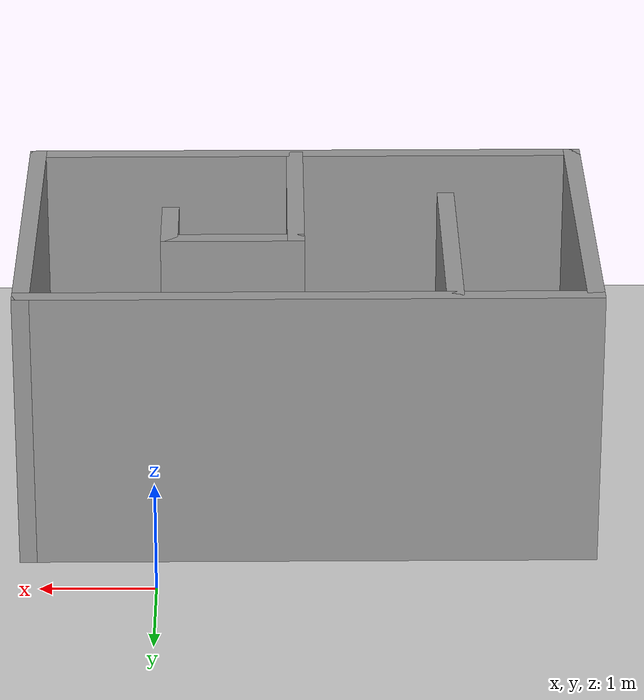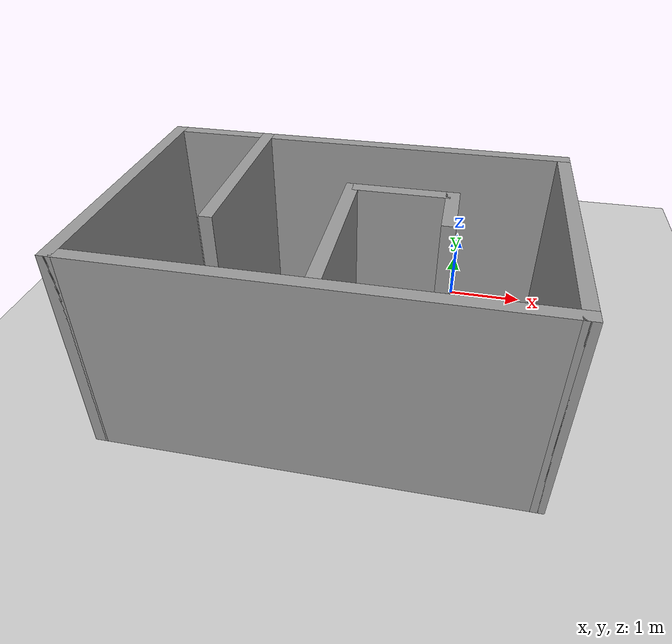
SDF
<sdf version="1.7">
 <world name="default">
  <light name="sun" type="directional">
   <pose>0 0 10 0 -0 0</pose>
   <diffuse>0.8 0.8 0.8 1</diffuse>
   <specular>0.2 0.2 0.2 1</specular>
   <attenuation>
    <range>1000</range>
    <constant>0.9</constant>
    <linear>0.01</linear>
    <quadratic>0.001</quadratic>
   </attenuation>
   <direction>-0.5 0.1 -0.9</direction>
   <spot><inner_angle>0</inner_angle><outer_angle>0</outer_angle><falloff>0</falloff></spot>
  </light>
  <model name="ground_plane">
   <static>1</static>
   <link name="link">
    <collision name="collision">
     <geometry><plane><normal>0 0 1</normal><size>100 100</size></plane></geometry>
     <surface>
      <contact><collide_bitmask>65535</collide_bitmask></contact>
      <friction><ode><mu>100</mu><mu2>50</mu2></ode></friction>
     </surface>
    </collision>
    <visual name="visual">
     <cast_shadows>0</cast_shadows>
     <geometry><plane><normal>0 0 1</normal><size>100 100</size></plane></geometry>
     <material>
      <script><uri>file://media/materials/scripts/gazebo.material</uri><name>Gazebo/Grey</name></script>
     </material>
    </visual>
   </link>
  </model>
  <gravity>0 0 -9.8</gravity>
  <magnetic_field>6e-06 2.3e-05 -4.2e-05</magnetic_field>
  <atmosphere type="adiabatic"/>
  <physics type="ode">
   <max_step_size>0.001</max_step_size>
   <real_time_factor>1</real_time_factor>
   <real_time_update_rate>1000</real_time_update_rate>
  </physics>
  <scene><ambient>0.4 0.4 0.4 1</ambient><background>0.7 0.7 0.7 1</background><shadows>1</shadows></scene>
  <spherical_coordinates>
   <surface_model>EARTH_WGS84</surface_model>
   <latitude_deg>0</latitude_deg>
   <longitude_deg>0</longitude_deg>
   <elevation>0</elevation>
   <heading_deg>0</heading_deg>
  </spherical_coordinates>
  <model name="mycar">
   <link name="base_footprint">
    <inertial>
     <pose>0.00127 0 0.093611 0 -0 0</pose>
     <mass>0.63</mass>
     <inertia>
      <ixx>0.00557395</ixx>
      <ixy>0</ixy>
      <ixz>-1.11111e-05</ixz>
      <iyy>0.00563694</iyy>
      <iyz>0</iyz>
      <izz>0.00261003</izz>
     </inertia>
    </inertial>
    <collision name="base_footprint_fixed_joint_lump__base_link_collision">
     <pose>0 0 0.055 0 -0 0</pose>
     <geometry><cylinder><length>0.08</length><radius>0.1</radius></cylinder></geometry>
    </collision>
    <collision name="base_footprint_fixed_joint_lump__camera_collision_1">
     <pose>0.08 0 0.1075 0 -0 0</pose>
     <geometry><box><size>0.01 0.025 0.025</size></box></geometry>
    </collision>
    <collision name="base_footprint_fixed_joint_lump__support_collision_2">
     <pose>0 0 0.17 0 -0 0</pose>
     <geometry><cylinder><length>0.15</length><radius>0.01</radius></cylinder></geometry>
    </collision>
    <collision name="base_footprint_fixed_joint_lump__laser_collision_3">
     <pose>0 0 0.27 0 -0 0</pose>
     <geometry><cylinder><length>0.05</length><radius>0.03</radius></cylinder></geometry>
    </collision>
    <visual name="base_footprint_visual"><geometry><sphere><radius>0.001</radius></sphere></geometry></visual>
    <visual name="base_footprint_fixed_joint_lump__base_link_visual_1">
     <pose>0 0 0.055 0 -0 0</pose>
     <geometry><cylinder><length>0.08</length><radius>0.1</radius></cylinder></geometry>
     <material>
      <script><name>Gazebo/Yellow</name><uri>file://media/materials/scripts/gazebo.material</uri></script>
     </material>
    </visual>
    <visual name="base_footprint_fixed_joint_lump__camera_visual_2">
     <pose>0.08 0 0.1075 0 -0 0</pose>
     <geometry><box><size>0.01 0.025 0.025</size></box></geometry>
     <material>
      <script><name>Gazebo/Blue</name><uri>file://media/materials/scripts/gazebo.material</uri></script>
     </material>
    </visual>
    <visual name="base_footprint_fixed_joint_lump__support_visual_3">
     <pose>0 0 0.17 0 -0 0</pose>
     <geometry><cylinder><length>0.15</length><radius>0.01</radius></cylinder></geometry>
     <material>
      <script><name>Gazebo/White</name><uri>file://media/materials/scripts/gazebo.material</uri></script>
     </material>
    </visual>
    <visual name="base_footprint_fixed_joint_lump__laser_visual_4">
     <pose>0 0 0.27 0 -0 0</pose>
     <geometry><cylinder><length>0.05</length><radius>0.03</radius></cylinder></geometry>
     <material>
      <script><name>Gazebo/Black</name><uri>file://media/materials/scripts/gazebo.material</uri></script>
     </material>
    </visual>
   </link>
   <joint name="back_wheel2base_link" type="revolute">
    <pose relative_to="base_footprint">-0.0925 0 0.0075 0 -0 0</pose>
    <parent>base_footprint</parent>
    <child>back_wheel</child>
    <axis>
     <xyz>1 1 1</xyz>
     <limit><lower>-1e+16</lower><upper>1e+16</upper></limit>
     <dynamics><spring_reference>0</spring_reference><spring_stiffness>0</spring_stiffness></dynamics>
    </axis>
   </joint>
   <link name="back_wheel">
    <pose relative_to="back_wheel2base_link">0 0 0 0 -0 0</pose>
    <inertial>
     <mass>0.03</mass>
     <inertia>
      <ixx>6.75e-07</ixx>
      <ixy>0</ixy>
      <ixz>0</ixz>
      <iyy>6.75e-07</iyy>
      <iyz>0</iyz>
      <izz>6.75e-07</izz>
     </inertia>
    </inertial>
    <collision name="back_wheel_collision">
     <geometry><sphere><radius>0.0075</radius></sphere></geometry>
    </collision>
    <visual name="back_wheel_visual">
     <geometry><sphere><radius>0.0075</radius></sphere></geometry>
     <material>
      <script><name>Gazebo/Red</name><uri>file://media/materials/scripts/gazebo.material</uri></script>
     </material>
    </visual>
   </link>
   <joint name="front_wheel2base_link" type="revolute">
    <pose relative_to="base_footprint">0.0925 0 0.0075 0 -0 0</pose>
    <parent>base_footprint</parent>
    <child>front_wheel</child>
    <axis>
     <xyz>1 1 1</xyz>
     <limit><lower>-1e+16</lower><upper>1e+16</upper></limit>
     <dynamics><spring_reference>0</spring_reference><spring_stiffness>0</spring_stiffness></dynamics>
    </axis>
   </joint>
   <link name="front_wheel">
    <pose relative_to="front_wheel2base_link">0 0 0 0 -0 0</pose>
    <inertial>
     <mass>0.03</mass>
     <inertia>
      <ixx>6.75e-07</ixx>
      <ixy>0</ixy>
      <ixz>0</ixz>
      <iyy>6.75e-07</iyy>
      <iyz>0</iyz>
      <izz>6.75e-07</izz>
     </inertia>
    </inertial>
    <collision name="front_wheel_collision">
     <geometry><sphere><radius>0.0075</radius></sphere></geometry>
    </collision>
    <visual name="front_wheel_visual">
     <geometry><sphere><radius>0.0075</radius></sphere></geometry>
     <material>
      <script><name>Gazebo/Red</name><uri>file://media/materials/scripts/gazebo.material</uri></script>
     </material>
    </visual>
   </link>
   <joint name="left_wheel2base_link" type="revolute">
    <pose relative_to="base_footprint">0 0.1 0.0325 0 -0 0</pose>
    <parent>base_footprint</parent>
    <child>left_wheel</child>
    <axis>
     <xyz>0 1 0</xyz>
     <limit><lower>-1e+16</lower><upper>1e+16</upper></limit>
     <dynamics><spring_reference>0</spring_reference><spring_stiffness>0</spring_stiffness></dynamics>
    </axis>
   </joint>
   <link name="left_wheel">
    <pose relative_to="left_wheel2base_link">0 0 0 0 -0 0</pose>
    <inertial>
     <mass>0.05</mass>
     <inertia>
      <ixx>1.41406e-05</ixx>
      <ixy>0</ixy>
      <ixz>0</ixz>
      <iyy>1.41406e-05</iyy>
      <iyz>0</iyz>
      <izz>2.64063e-05</izz>
     </inertia>
    </inertial>
    <collision name="left_wheel_collision">
     <pose>0 0 0 1.5708 -0 0</pose>
     <geometry><cylinder><length>0.015</length><radius>0.0325</radius></cylinder></geometry>
    </collision>
    <visual name="left_wheel_visual">
     <pose>0 0 0 1.5708 -0 0</pose>
     <geometry><cylinder><length>0.015</length><radius>0.0325</radius></cylinder></geometry>
     <material>
      <script><name>Gazebo/Red</name><uri>file://media/materials/scripts/gazebo.material</uri></script>
     </material>
    </visual>
   </link>
   <joint name="right_wheel2base_link" type="revolute">
    <pose relative_to="base_footprint">0 -0.1 0.0325 0 -0 0</pose>
    <parent>base_footprint</parent>
    <child>right_wheel</child>
    <axis>
     <xyz>0 1 0</xyz>
     <limit><lower>-1e+16</lower><upper>1e+16</upper></limit>
     <dynamics><spring_reference>0</spring_reference><spring_stiffness>0</spring_stiffness></dynamics>
    </axis>
   </joint>
   <link name="right_wheel">
    <pose relative_to="right_wheel2base_link">0 0 0 0 -0 0</pose>
    <inertial>
     <mass>0.05</mass>
     <inertia>
      <ixx>1.41406e-05</ixx>
      <ixy>0</ixy>
      <ixz>0</ixz>
      <iyy>1.41406e-05</iyy>
      <iyz>0</iyz>
      <izz>2.64063e-05</izz>
     </inertia>
    </inertial>
    <collision name="right_wheel_collision">
     <pose>0 0 0 1.5708 -0 0</pose>
     <geometry><cylinder><length>0.015</length><radius>0.0325</radius></cylinder></geometry>
    </collision>
    <visual name="right_wheel_visual">
     <pose>0 0 0 1.5708 -0 0</pose>
     <geometry><cylinder><length>0.015</length><radius>0.0325</radius></cylinder></geometry>
     <material>
      <script><name>Gazebo/Red</name><uri>file://media/materials/scripts/gazebo.material</uri></script>
     </material>
    </visual>
   </link>
   <pose>-3.25457 -1.67869 0 0 -0 0.525807</pose>
  </model>
  <model name="testmodel">
   <pose>-1.30611 -1.54405 0 0 -0 0</pose>
   <link name="Wall_0">
    <collision name="Wall_0_Collision">
     <geometry><box><size>5 0.15 2.5</size></box></geometry>
     <pose>0 0 1.25 0 -0 0</pose>
    </collision>
    <visual name="Wall_0_Visual">
     <pose>0 0 1.25 0 -0 0</pose>
     <geometry><box><size>5 0.15 2.5</size></box></geometry>
     <material>
      <script><uri>file://media/materials/scripts/gazebo.material</uri><name>Gazebo/Grey</name></script>
      <ambient>1 1 1 1</ambient>
     </material>
     <meta><layer>0</layer></meta>
    </visual>
    <pose>0 0.98565 0 0 -0 3.14159</pose>
   </link>
   <link name="Wall_1">
    <collision name="Wall_1_Collision">
     <geometry><box><size>3.25 0.15 2.5</size></box></geometry>
     <pose>0 0 1.25 0 -0 0</pose>
    </collision>
    <visual name="Wall_1_Visual">
     <pose>0 0 1.25 0 -0 0</pose>
     <geometry><box><size>3.25 0.15 2.5</size></box></geometry>
     <material>
      <script><uri>file://media/materials/scripts/gazebo.material</uri><name>Gazebo/Grey</name></script>
      <ambient>1 1 1 1</ambient>
     </material>
     <meta><layer>0</layer></meta>
    </visual>
    <pose>-2.425 -0.56435 0 0 -0 -1.5708</pose>
   </link>
   <link name="Wall_10">
    <collision name="Wall_10_Collision">
     <geometry><box><size>1.25 0.15 2.5</size></box></geometry>
     <pose>0 0 1.25 0 -0 0</pose>
    </collision>
    <visual name="Wall_10_Visual">
     <pose>0 0 1.25 0 -0 0</pose>
     <geometry><box><size>1.25 0.15 2.5</size></box></geometry>
     <material>
      <script><uri>file://media/materials/scripts/gazebo.material</uri><name>Gazebo/Grey</name></script>
      <ambient>1 1 1 1</ambient>
     </material>
     <meta><layer>0</layer></meta>
    </visual>
    <pose>0.6474 -0.219325 0 0 -0 0</pose>
   </link>
   <link name="Wall_11">
    <collision name="Wall_11_Collision">
     <geometry><box><size>0.75 0.15 2.5</size></box></geometry>
     <pose>0 0 1.25 0 -0 0</pose>
    </collision>
    <visual name="Wall_11_Visual">
     <pose>0 0 1.25 0 -0 0</pose>
     <geometry><box><size>0.75 0.15 2.5</size></box></geometry>
     <material>
      <script><uri>file://media/materials/scripts/gazebo.material</uri><name>Gazebo/Grey</name></script>
      <ambient>1 1 1 1</ambient>
     </material>
     <meta><layer>0</layer></meta>
    </visual>
    <pose>1.1974 -0.519325 0 0 -0 -1.5708</pose>
   </link>
   <link name="Wall_2">
    <collision name="Wall_2_Collision">
     <geometry><box><size>5 0.15 2.5</size></box></geometry>
     <pose>0 0 1.25 0 -0 0</pose>
    </collision>
    <visual name="Wall_2_Visual">
     <pose>0 0 1.25 0 -0 0</pose>
     <geometry><box><size>5 0.15 2.5</size></box></geometry>
     <material>
      <script><uri>file://media/materials/scripts/gazebo.material</uri><name>Gazebo/Grey</name></script>
      <ambient>1 1 1 1</ambient>
     </material>
     <meta><layer>0</layer></meta>
    </visual>
    <pose>0 -2.11435 0 0 -0 0</pose>
   </link>
   <link name="Wall_3">
    <collision name="Wall_3_Collision">
     <geometry><box><size>3.25 0.15 2.5</size></box></geometry>
     <pose>0 0 1.25 0 -0 0</pose>
    </collision>
    <visual name="Wall_3_Visual">
     <pose>0 0 1.25 0 -0 0</pose>
     <geometry><box><size>3.25 0.15 2.5</size></box></geometry>
     <material>
      <script><uri>file://media/materials/scripts/gazebo.material</uri><name>Gazebo/Grey</name></script>
      <ambient>1 1 1 1</ambient>
     </material>
     <meta><layer>0</layer></meta>
    </visual>
    <pose>2.425 -0.56435 0 0 -0 1.5708</pose>
   </link>
   <link name="Wall_7">
    <collision name="Wall_7_Collision">
     <geometry><box><size>2.25 0.15 2.5</size></box></geometry>
     <pose>0 0 1.25 0 -0 0</pose>
    </collision>
    <visual name="Wall_7_Visual">
     <pose>0 0 1.25 0 -0 0</pose>
     <geometry><box><size>2.25 0.15 2.5</size></box></geometry>
     <material>
      <script><uri>file://media/materials/scripts/gazebo.material</uri><name>Gazebo/Grey</name></script>
      <ambient>1 1 1 1</ambient>
     </material>
     <meta><layer>0</layer></meta>
    </visual>
    <pose>-1.23832 -0.06435 0 0 -0 -1.5708</pose>
   </link>
   <link name="Wall_9">
    <collision name="Wall_9_Collision">
     <geometry><box><size>2 0.15 2.5</size></box></geometry>
     <pose>0 0 1.25 0 -0 0</pose>
    </collision>
    <visual name="Wall_9_Visual">
     <pose>0 0 1.25 0 -0 0</pose>
     <geometry><box><size>2 0.15 2.5</size></box></geometry>
     <material>
      <script><uri>file://media/materials/scripts/gazebo.material</uri><name>Gazebo/Grey</name></script>
      <ambient>1 1 1 1</ambient>
     </material>
     <meta><layer>0</layer></meta>
    </visual>
    <pose>0.0974 -1.14433 0 0 -0 1.5708</pose>
   </link>
   <static>1</static>
  </model>
 </world>
</sdf>
